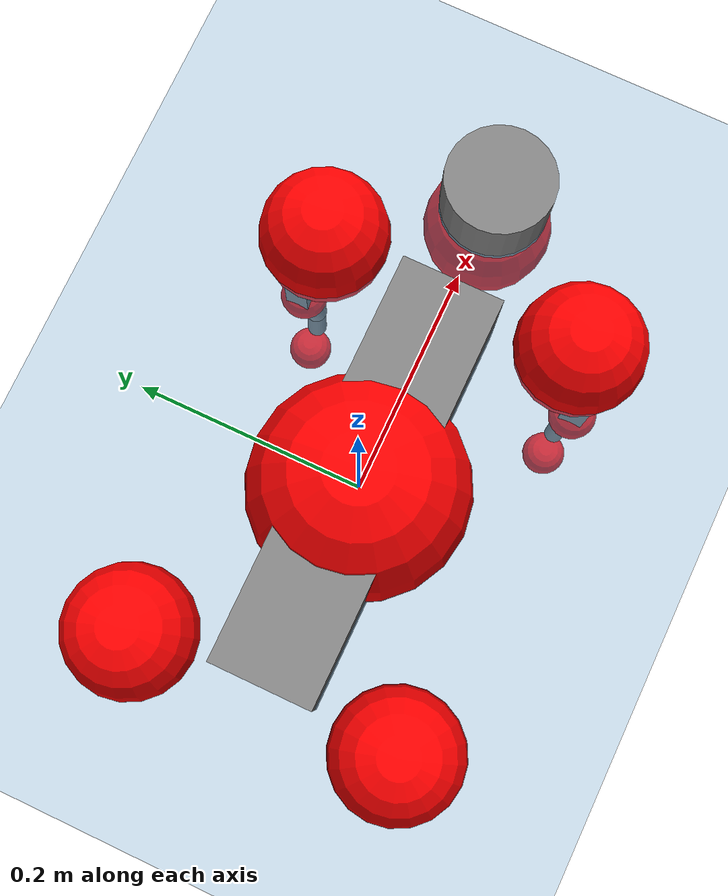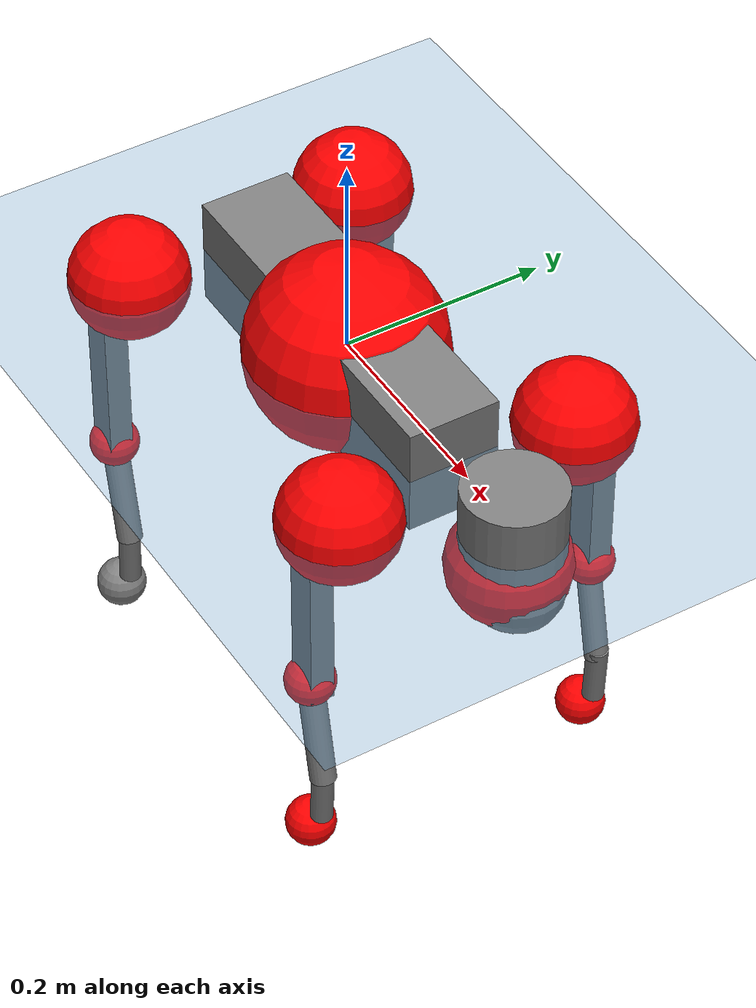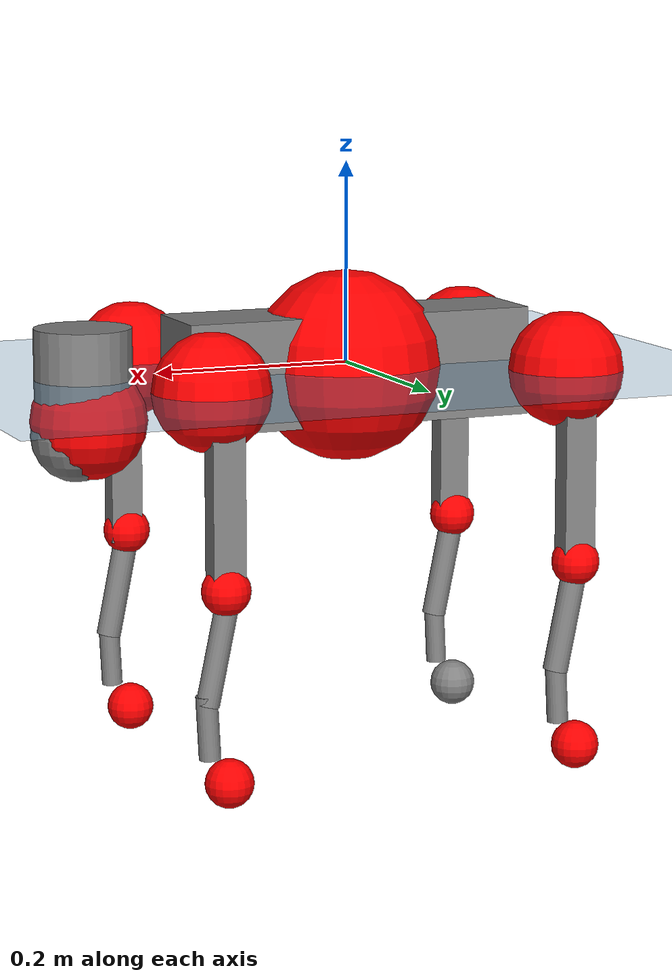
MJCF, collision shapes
<mujoco model="go2">
  <compiler angle="radian" assetdir="assets" balanceinertia="true" inertiafromgeom="false"/>

  <option timestep="0.005" density="1.2" viscosity="2e-05"/>

  <size nkey="1"/>

  <visual>
    <quality shadowsize="8192"/>
    <map shadowclip="0.5"/>
  </visual>

  <default>
    <default class="/">
      <geom contype="0" conaffinity="0" group="1" solref="-1000 -80"/>
      <site size="0.01 0.005 0.005" group="5"/>
      <general forcelimited="true" biastype="affine" gainprm="20" biasprm="0 -20 -0.5"/>
      <default class="go2">
        <joint armature="0.01" damping="0.01" frictionloss="0.2"/>
        <geom condim="1" margin="0.001"/>
        <default class="visual">
          <geom type="mesh" group="2"/>
        </default>
        <default class="collision">
          <geom group="3"/>
          <default class="foot">
            <geom size="0.022 0 0" condim="6" priority="1" friction="0.8 0.02 0.01" solimp="0.015 1 0.022"/>
          </default>
        </default>
        <default class="reward_collision_sphere">
          <geom group="5" rgba="1 0 0 1"/>
        </default>
      </default>
    </default>
  </default>

  <asset>
    <texture type="skybox" colorspace="auto" name="//unnamed_texture_0" builtin="gradient" rgb1="0.95 0.95 0.95" rgb2="0.95 0.95 0.95" width="100" height="600"/>
    <texture type="2d" colorspace="auto" name="texplane" builtin="checker" rgb1="0.345 0.575 0.748" rgb2="0.345 0.575 0.748" markrgb="1 1 1" width="512" height="512"/>
    <material name="MatPlane" class="/" texture="texplane" texuniform="true" texrepeat="2 2" specular="0.9"/>
    <material name="metal" class="/" rgba="0.9 0.95 0.95 1"/>
    <material name="black" class="/" rgba="0 0 0 1"/>
    <material name="white" class="/"/>
    <material name="gray" class="/" rgba="0.671705 0.692426 0.77427 1"/>
    <mesh name="base_0" class="/" file="base_0.obj"/>
    <mesh name="base_1" class="/" file="base_1.obj"/>
    <mesh name="base_2" class="/" file="base_2.obj"/>
    <mesh name="base_3" class="/" file="base_3.obj"/>
    <mesh name="base_4" class="/" file="base_4.obj"/>
    <mesh name="hip_0" class="/" file="hip_0.obj"/>
    <mesh name="hip_1" class="/" file="hip_1.obj"/>
    <mesh name="thigh_0" class="/" file="thigh_0.obj"/>
    <mesh name="thigh_1" class="/" file="thigh_1.obj"/>
    <mesh name="thigh_mirror_0" class="/" file="thigh_mirror_0.obj"/>
    <mesh name="thigh_mirror_1" class="/" file="thigh_mirror_1.obj"/>
    <mesh name="calf_0" class="/" file="calf_0.obj"/>
    <mesh name="calf_1" class="/" file="calf_1.obj"/>
    <mesh name="calf_mirror_0" class="/" file="calf_mirror_0.obj"/>
    <mesh name="calf_mirror_1" class="/" file="calf_mirror_1.obj"/>
    <mesh name="foot" class="/" file="foot.obj"/>
  </asset>

  <worldbody>
    <geom name="floor" class="/" size="100 100 0.125" type="plane" group="0" material="MatPlane"/>
    <light name="toplight_shadow" class="/" pos="0 0 5" dir="0.0990148 0.0990148 -0.990148" type="directional" ambient="0.04 0.04 0.04" diffuse="0.55 0.55 0.55" specular="0.12 0.12 0.12"/>
    <light name="toplight_fill" class="/" pos="0 0 5" dir="0.0990148 0.0990148 -0.990148" type="directional" castshadow="false" ambient="0.04 0.04 0.04" diffuse="0.3 0.3 0.3" specular="0.08 0.08 0.08"/>
    <body name="trunk" childclass="go2" pos="-0.000349518 -0.000334465 -0.00267558" quat="0.999999 0.00108134 8.94502e-05 -0.000751605">
      <inertial pos="0.0194796 0.00239899 -0.0048209" quat="-0.000797668 0.718496 0.00901244 0.695472" mass="6.06951" diaginertia="0.0911205 0.11363 0.0134959"/>
      <joint name="//unnamed_joint_0" type="free" armature="0" damping="0" frictionloss="0"/>
      <geom name="//unnamed_geom_1" class="visual" material="black" mesh="base_0"/>
      <geom name="//unnamed_geom_2" class="visual" material="black" mesh="base_1"/>
      <geom name="//unnamed_geom_3" class="visual" material="black" mesh="base_2"/>
      <geom name="//unnamed_geom_4" class="visual" material="white" mesh="base_3"/>
      <geom name="//unnamed_geom_5" class="visual" material="gray" mesh="base_4"/>
      <geom name="trunk_1" class="collision" size="0.179518 0.0446169 0.0543993" type="box"/>
      <geom name="trunk_2" class="collision" size="0.0477186 0.0429468" pos="0.274014 0 0.00880946" type="cylinder"/>
      <geom name="trunk_3" class="collision" size="0.0448555" pos="0.281705 0 -0.0528568"/>
      <geom name="//unnamed_geom_9" class="reward_collision_sphere" size="0.0954373"/>
      <geom name="//unnamed_geom_10" class="reward_collision_sphere" size="0.0572624" pos="0.269206 0 -0.0396426"/>
      <site name="imu" pos="-0.0292462 0.00459518 0.026756" size="0.00954373"/>
      <camera name="track" pos="0 -2.04144 0" quat="0.707107 0.707107 0 0" mode="trackcom"/>
      <camera name="ego_camera" pos="0.299973 0 0.0396426" quat="-0.5 -0.5 0.5 0.5"/>
      <body name="FL_hip" pos="0.186265 0.0483366 0.00111351" quat="1 -4.73287e-05 0.000122206 -5.46513e-05">
        <inertial pos="-0.00761847 0.00243256 -0.00249135" quat="0.504216 0.50347 0.504273 0.487845" mass="0.581901" diaginertia="0.00073558 0.00066167 0.00025202"/>
        <joint name="FL_hip_joint" pos="0 0 0" axis="0.999973 -0.00723993 -0.00146244" range="-1.04438 1.06121" armature="0.00958361" damping="0" frictionloss="0.196067"/>
        <geom name="//unnamed_geom_11" class="visual" material="metal" mesh="hip_0"/>
        <geom name="//unnamed_geom_12" class="visual" material="gray" mesh="hip_1"/>
        <geom name="//unnamed_geom_13" class="collision" size="0.0439012 0.0190875" pos="0 0.0816577 0" quat="0.707107 0.707107 0 0" type="cylinder"/>
        <geom name="//unnamed_geom_14" class="reward_collision_sphere" size="0.0572624" pos="0 0.0714504 0"/>
        <body name="FL_thigh" pos="-0.00313791 0.0975977 0.00231348" quat="1 -1.42335e-08 -5.20929e-06 -3.05145e-05">
          <inertial pos="-0.00403543 -0.0227905 -0.0294355" quat="0.830805 0.0881171 -0.0191762 0.54921" mass="0.957552" diaginertia="0.00467782 0.00626707 0.000439237"/>
          <joint name="FL_thigh_joint" pos="0 0 0" axis="-0.00352782 0.999993 0.000774773" stiffness="0.00834555" range="-1.58263 3.49272" armature="0.00876145" damping="0.0152907" frictionloss="0.19041"/>
          <geom name="//unnamed_geom_15" class="visual" material="metal" mesh="thigh_0"/>
          <geom name="//unnamed_geom_16" class="visual" material="gray" mesh="thigh_1"/>
          <geom name="//unnamed_geom_17" class="collision" size="0.101641 0.0116911 0.0162243" pos="0 0 -0.0938208" quat="0.707107 0 0.707107 0" type="box"/>
          <body name="FL_calf" pos="7.13671e-05 0.000306359 -0.188075" quat="1 0.000140138 -5.14735e-05 -0.000132425">
            <inertial pos="0.00349422 -0.00321876 -0.124242" quat="0.71196 0.00307225 -0.00586484 0.702188" mass="0.207847" diaginertia="0.00117625 0.00161116 2.81168e-05"/>
            <joint name="FL_calf_joint" pos="0 0 0" axis="0.00100352 0.999974 0.00718254" stiffness="0.00181835" range="-2.7759 -0.815772" armature="0.0099238" damping="0.00617188" frictionloss="0.2164"/>
            <geom name="//unnamed_geom_18" class="visual" material="gray" mesh="calf_0"/>
            <geom name="//unnamed_geom_19" class="visual" material="black" mesh="calf_1"/>
            <geom name="FL_calf0" class="collision" size="0.0114525 0.0572624" pos="0.00769161 0 -0.0528568" quat="0.994493 0 -0.104807 0" type="cylinder"/>
            <geom name="//unnamed_geom_21" class="collision" size="0.0104981 0.0310171" pos="0.019229 0 -0.13038" quat="0.999688 0 0.0249974 0" type="cylinder"/>
            <geom name="//unnamed_geom_22" class="visual" pos="0 0 -0.187642" quat="1 0 0 0" material="black" mesh="foot"/>
            <geom name="FL_foot" class="foot" size="0.0160964" pos="-0.0019229 0 -0.187642"/>
            <geom name="//unnamed_geom_24" class="reward_collision_sphere" size="0.0238593"/>
            <geom name="//unnamed_geom_25" class="reward_collision_sphere" size="0.0238593" pos="-0.0019229 0 -0.187642"/>
            <site name="FL_foot" class="foot" pos="-0.0019229 0 -0.187642" size="0.00954373"/>
          </body>
        </body>
      </body>
      <body name="FR_hip" pos="0.186413 -0.0472165 0.00100757" quat="0.999999 -0.000821133 -0.0011769 -0.000135635">
        <inertial pos="-0.00434698 -0.00176597 0.000414161" quat="0.505344 0.506652 0.488291 0.499503" mass="0.615998" diaginertia="0.000726818 0.000665287 0.000255916"/>
        <joint name="FR_hip_joint" pos="0 0 0" axis="0.999989 -0.000522445 0.00475102" range="-1.1042 1.03706" armature="0.00908414" damping="0.00196647" frictionloss="0.203831"/>
        <geom name="//unnamed_geom_26" class="visual" pos="0 1.21766e-09 5.22278e-08" quat="4.63268e-05 1 0 0" material="metal" mesh="hip_0"/>
        <geom name="//unnamed_geom_27" class="visual" pos="0 1.97397e-09 -1.29179e-07" quat="4.63268e-05 1 0 0" material="gray" mesh="hip_1"/>
        <geom name="//unnamed_geom_28" class="collision" size="0.0439012 0.0190875" pos="0 -0.0816577 0" quat="0.707107 0.707107 0 0" type="cylinder"/>
        <geom name="//unnamed_geom_29" class="reward_collision_sphere" size="0.0572624" pos="0 -0.0714504 0"/>
        <body name="FR_thigh" pos="-6.08314e-05 -0.0987474 0.00165967" quat="1 0.000136022 -2.01517e-05 -5.45952e-05">
          <inertial pos="-0.00300712 0.0235139 -0.0279767" quat="0.550769 -0.0159433 0.0820922 0.830458" mass="1.02412" diaginertia="0.00490792 0.00627362 0.000464285"/>
          <joint name="FR_thigh_joint" pos="0 0 0" axis="0.00896278 -0.999957 0.00216541" stiffness="0.0113151" range="-3.48755 1.55129" armature="0.00960199" damping="0.00423026" frictionloss="0.170561"/>
          <geom name="//unnamed_geom_30" class="visual" material="metal" mesh="thigh_mirror_0"/>
          <geom name="//unnamed_geom_31" class="visual" material="gray" mesh="thigh_mirror_1"/>
          <geom name="//unnamed_geom_32" class="collision" size="0.101641 0.0116911 0.0162243" pos="0 0 -0.0938208" quat="0.707107 0 0.707107 0" type="box"/>
          <body name="FR_calf" pos="-0.00324433 -0.00105314 -0.185344" quat="1 -5.01121e-05 0.000386038 0.000199858">
            <inertial pos="0.0072561 -0.00182624 -0.122595" quat="0.699922 -0.0151435 0.0075878 0.714018" mass="0.204732" diaginertia="0.00117732 0.00161757 2.68437e-05"/>
            <joint name="FR_calf_joint" pos="0 0 0" axis="0.00110696 -0.999999 -0.000522458" stiffness="0.00492575" range="0.829383 2.71966" armature="0.00959018" damping="0" frictionloss="0.188404"/>
            <geom name="//unnamed_geom_33" class="visual" material="gray" mesh="calf_mirror_0"/>
            <geom name="//unnamed_geom_34" class="visual" material="black" mesh="calf_mirror_1"/>
            <geom name="FR_calf0" class="collision" size="0.0124068 0.0572624" pos="0.00961452 0 -0.0528568" quat="0.995004 0 -0.0998334 0" type="cylinder"/>
            <geom name="//unnamed_geom_36" class="collision" size="0.0104981 0.0310171" pos="0.019229 0 -0.13038" quat="0.999688 0 0.0249974 0" type="cylinder"/>
            <geom name="//unnamed_geom_37" class="visual" pos="0 0 -0.187642" quat="1 0 0 0" material="black" mesh="foot"/>
            <geom name="FR_foot" class="foot" size="0.020973" pos="-0.0019229 0 -0.187642"/>
            <geom name="//unnamed_geom_39" class="reward_collision_sphere" size="0.0238593"/>
            <geom name="//unnamed_geom_40" class="reward_collision_sphere" size="0.0238593" pos="-0.0019229 0 -0.187642"/>
            <site name="FR_foot" class="foot" pos="-0.0019229 0 -0.187642" size="0.00954373"/>
          </body>
        </body>
      </body>
      <body name="RL_hip" pos="-0.185427 0.0461154 0.00128851" quat="1 -0.000137914 -8.21028e-05 0.000157323">
        <inertial pos="0.00595942 -0.000116057 -0.00252936" quat="0.506335 0.496659 0.498178 0.498771" mass="0.583691" diaginertia="0.000716319 0.000649905 0.000245373"/>
        <joint name="RL_hip_joint" pos="0 0 0" axis="-0.999942 0.00740387 0.00786824" range="-1.09936 1.09679" armature="0.010693" damping="0.0134539" frictionloss="0.192182"/>
        <geom name="//unnamed_geom_41" class="visual" pos="-7.01331e-10 0 -1.37477e-07" quat="4.63268e-05 0 1 0" material="metal" mesh="hip_0"/>
        <geom name="//unnamed_geom_42" class="visual" pos="-1.13694e-09 0 -1.21923e-07" quat="4.63268e-05 0 1 0" material="gray" mesh="hip_1"/>
        <geom name="//unnamed_geom_43" class="collision" size="0.0439012 0.0190875" pos="0 0.0816577 0" quat="0.707107 0.707107 0 0" type="cylinder"/>
        <geom name="//unnamed_geom_44" class="reward_collision_sphere" size="0.0572624" pos="0 0.0714504 0"/>
        <body name="RL_thigh" pos="-0.000231821 0.094984 0.000538816" quat="1 -0.000109141 0.00092539 0.000132605">
          <inertial pos="-0.000929542 -0.0243634 -0.0315308" quat="0.829525 0.0848043 -0.0200756 0.551629" mass="1.02658" diaginertia="0.00521216 0.00663419 0.000490906"/>
          <joint name="RL_thigh_joint" pos="0 0 0" axis="0.0194981 0.999809 0.00103108" stiffness="0.0068621" range="-0.550332 4.54681" armature="0.00993607" damping="0.00314589" frictionloss="0.191042"/>
          <geom name="//unnamed_geom_45" class="visual" material="metal" mesh="thigh_0"/>
          <geom name="//unnamed_geom_46" class="visual" material="gray" mesh="thigh_1"/>
          <geom name="//unnamed_geom_47" class="collision" size="0.101641 0.0116911 0.0162243" pos="0 0 -0.0938208" quat="0.707107 0 0.707107 0" type="box"/>
          <body name="RL_calf" pos="-0.00135462 -0.000775545 -0.190185" quat="1 0.000284065 -8.30575e-05 -0.000920821">
            <inertial pos="0.00335242 0.00135289 -0.127064" quat="0.714764 0.00453601 0.00664237 0.699319" mass="0.206618" diaginertia="0.00119979 0.00157775 2.75132e-05"/>
            <joint name="RL_calf_joint" pos="0 0 0" axis="0.00811727 0.999967 0.000434422" stiffness="0.00572494" range="-2.73465 -0.888098" armature="0.0108251" damping="0" frictionloss="0.191388"/>
            <geom name="//unnamed_geom_48" class="visual" material="gray" mesh="calf_0"/>
            <geom name="//unnamed_geom_49" class="visual" material="black" mesh="calf_1"/>
            <geom name="RL_calf0" class="collision" size="0.0124068 0.0572624" pos="0.00961452 0 -0.0528568" quat="0.995004 0 -0.0998334 0" type="cylinder"/>
            <geom name="//unnamed_geom_51" class="collision" size="0.0104981 0.0310171" pos="0.019229 0 -0.13038" quat="0.999688 0 0.0249974 0" type="cylinder"/>
            <geom name="//unnamed_geom_52" class="visual" pos="0 0 -0.187642" quat="1 0 0 0" material="black" mesh="foot"/>
            <geom name="RL_foot" class="foot" size="0.0193568" pos="-0.0019229 0 -0.187642"/>
            <geom name="//unnamed_geom_54" class="reward_collision_sphere" size="0.0238593"/>
            <geom name="//unnamed_geom_55" class="reward_collision_sphere" size="0.0238593" pos="-0.0019229 0 -0.187642"/>
            <site name="RL_foot" class="foot" pos="-0.0019229 0 -0.187642" size="0.00954373"/>
          </body>
        </body>
      </body>
      <body name="RR_hip" pos="-0.183141 -0.0483312 -0.00118623" quat="1 5.80476e-05 4.8979e-05 -0.000269741">
        <inertial pos="0.00292308 -0.00299609 -0.000349766" quat="0.509996 0.495377 0.491436 0.502988" mass="0.589445" diaginertia="0.000775536 0.000685386 0.000264992"/>
        <joint name="RR_hip_joint" pos="0 0 0" axis="-0.999908 -0.00955918 -0.00967433" stiffness="0.00238633" range="-1.04782 1.04884" armature="0.00960936" damping="0.00913372" frictionloss="0.215929"/>
        <geom name="//unnamed_geom_56" class="visual" pos="7.03383e-10 1.21766e-09 -1.89705e-07" quat="2.14617e-09 4.63268e-05 4.63268e-05 -1" material="metal" mesh="hip_0"/>
        <geom name="//unnamed_geom_57" class="visual" pos="1.13187e-09 1.97397e-09 7.25682e-09" quat="2.14617e-09 4.63268e-05 4.63268e-05 -1" material="gray" mesh="hip_1"/>
        <geom name="//unnamed_geom_58" class="collision" size="0.0439012 0.0190875" pos="0 -0.0816577 0" quat="0.707107 0.707107 0 0" type="cylinder"/>
        <geom name="//unnamed_geom_59" class="reward_collision_sphere" size="0.0572624" pos="0 -0.0714504 0"/>
        <body name="RR_thigh" pos="0.00153841 -0.0972028 -0.00208338" quat="1 -0.000103339 0.000242785 -0.000528111">
          <inertial pos="-0.00173838 0.0229409 -0.0306568" quat="0.551435 -0.0240544 0.090697 0.828924" mass="0.979316" diaginertia="0.00509483 0.0065562 0.000465325"/>
          <joint name="RR_thigh_joint" pos="0 0 0" axis="0.00828258 -0.999962 -0.00286564" range="-4.5438 0.483196" armature="0.00933867" damping="0.0102994" frictionloss="0.200884"/>
          <geom name="//unnamed_geom_60" class="visual" material="metal" mesh="thigh_mirror_0"/>
          <geom name="//unnamed_geom_61" class="visual" material="gray" mesh="thigh_mirror_1"/>
          <geom name="//unnamed_geom_62" class="collision" size="0.101641 0.0116911 0.0162243" pos="0 0 -0.0938208" quat="0.707107 0 0.707107 0" type="box"/>
          <body name="RR_calf" pos="-0.00233604 0.00176676 -0.189968" quat="0.999999 -0.000675443 -0.00104872 -0.000202277">
            <inertial pos="0.00500876 0.000779462 -0.124819" quat="0.700948 0.00766509 0.00462807 0.713156" mass="0.215152" diaginertia="0.00125207 0.0016543 2.76293e-05"/>
            <joint name="RR_calf_joint" pos="0 0 0" axis="-0.00706285 -0.999878 0.0139306" range="0.885682 2.74892" armature="0.00942871" damping="0.00289197" frictionloss="0.200631"/>
            <geom name="//unnamed_geom_63" class="visual" material="gray" mesh="calf_mirror_0"/>
            <geom name="//unnamed_geom_64" class="visual" material="black" mesh="calf_mirror_1"/>
            <geom name="RR_calf0" class="collision" size="0.0124068 0.0572624" pos="0.00961452 0 -0.0528568" quat="0.995004 0 -0.0998334 0" type="cylinder"/>
            <geom name="//unnamed_geom_66" class="collision" size="0.0104981 0.0310171" pos="0.019229 0 -0.13038" quat="0.999688 0 0.0249974 0" type="cylinder"/>
            <geom name="//unnamed_geom_67" class="visual" pos="0 0 -0.187642" quat="1 0 0 0" material="black" mesh="foot"/>
            <geom name="RR_foot" class="foot" size="0.023914" pos="-0.0019229 0 -0.187642"/>
            <geom name="//unnamed_geom_69" class="reward_collision_sphere" size="0.0238593"/>
            <geom name="//unnamed_geom_70" class="reward_collision_sphere" size="0.0238593" pos="-0.0019229 0 -0.187642"/>
            <site name="RR_foot" class="foot" pos="-0.0019229 0 -0.187642" size="0.00954373"/>
          </body>
        </body>
      </body>
    </body>
  </worldbody>

  <contact>
    <pair class="/" geom1="floor" geom2="FL_foot" name="//unnamed_contact_0"/>
    <pair class="/" geom1="floor" geom2="FR_foot" name="//unnamed_contact_1"/>
    <pair class="/" geom1="floor" geom2="RL_foot" name="//unnamed_contact_2"/>
    <pair class="/" geom1="floor" geom2="RR_foot" name="//unnamed_contact_3"/>
  </contact>

  <actuator>
    <general name="FL_hip" class="/" joint="FL_hip_joint" forcerange="-22.2088 22.2088" gainprm="18.6674" biasprm="0 -18.6674 -0.48994"/>
    <general name="FL_thigh" class="/" joint="FL_thigh_joint" forcerange="-22.0554 22.0554" gainprm="18.6674" biasprm="0 -18.6674 -0.48994"/>
    <general name="FL_calf" class="/" joint="FL_calf_joint" forcerange="-44.6691 44.6691" gainprm="18.6674" biasprm="0 -18.6674 -0.48994"/>
    <general name="FR_hip" class="/" joint="FR_hip_joint" forcerange="-23.2302 23.2302" gainprm="18.6674" biasprm="0 -18.6674 -0.48994"/>
    <general name="FR_thigh" class="/" joint="FR_thigh_joint" forcerange="-23.1861 23.1861" gainprm="18.6674" biasprm="0 -18.6674 -0.48994"/>
    <general name="FR_calf" class="/" joint="FR_calf_joint" forcerange="-43.4094 43.4094" gainprm="18.6674" biasprm="0 -18.6674 -0.48994"/>
    <general name="RL_hip" class="/" joint="RL_hip_joint" forcerange="-22.5298 22.5298" gainprm="18.6674" biasprm="0 -18.6674 -0.48994"/>
    <general name="RL_thigh" class="/" joint="RL_thigh_joint" forcerange="-20.3918 20.3918" gainprm="18.6674" biasprm="0 -18.6674 -0.48994"/>
    <general name="RL_calf" class="/" joint="RL_calf_joint" forcerange="-47.6265 47.6265" gainprm="18.6674" biasprm="0 -18.6674 -0.48994"/>
    <general name="RR_hip" class="/" joint="RR_hip_joint" forcerange="-22.5167 22.5167" gainprm="18.6674" biasprm="0 -18.6674 -0.48994"/>
    <general name="RR_thigh" class="/" joint="RR_thigh_joint" forcerange="-23.1653 23.1653" gainprm="18.6674" biasprm="0 -18.6674 -0.48994"/>
    <general name="RR_calf" class="/" joint="RR_calf_joint" forcerange="-45.3898 45.3898" gainprm="18.6674" biasprm="0 -18.6674 -0.48994"/>
  </actuator>

  <sensor>
    <gyro site="imu" name="imu_angular_velocity"/>
    <velocimeter site="imu" name="imu_linear_velocity"/>
    <framelinvel objtype="site" objname="FL_foot" name="FL_foot_global_linear_velocity"/>
    <framelinvel objtype="site" objname="FR_foot" name="FR_foot_global_linear_velocity"/>
    <framelinvel objtype="site" objname="RL_foot" name="RL_foot_global_linear_velocity"/>
    <framelinvel objtype="site" objname="RR_foot" name="RR_foot_global_linear_velocity"/>
  </sensor>

  <keyframe>
    <key name="home" qpos="0 0 0.325 1 0 0 0 0.1 0.8 -1.5 -0.1 -0.8 1.5 -0.1 0.8 -1.5 0.1 -0.8 1.5"/>
  </keyframe>
</mujoco>
